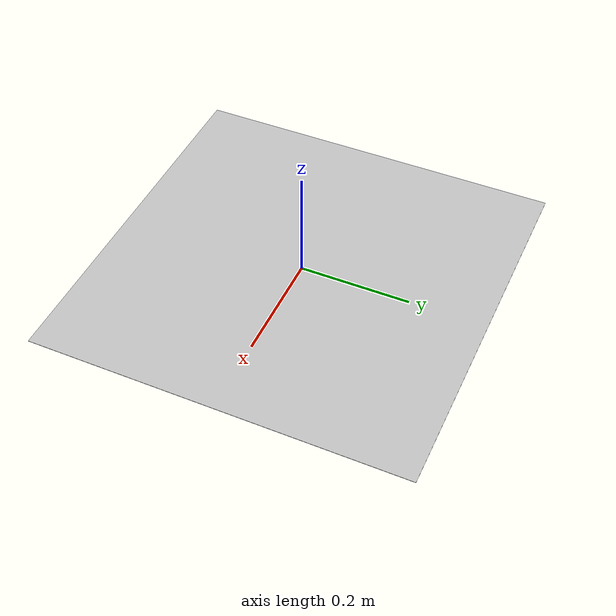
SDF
<?xml version="1.0"?>
<sdf version="1.6">
<model name="project2_straight_road">
  <static>true</static>
    <link name="link">
      <collision name="collision">
        <geometry>
          <plane>
            <normal>0 0 1</normal>
            <size>0.68 0.68</size>
          </plane>
        </geometry>
        <surface>
          <friction>
            <ode>
              <mu>75</mu>
              <mu2>75</mu2>
            </ode>
          </friction>
        </surface>
      </collision>
      <visual name="visual">
        <cast_shadows>false</cast_shadows>
        <geometry>
          <plane>
            <normal>0 0 1</normal>
            <size>0.68 0.68</size>
          </plane>
        </geometry>
        <material>
          <script>
            <uri>model://project2_straight_road/materials/scripts</uri>
            <uri>model://project2_straight_road/materials/textures</uri>
            <name>project2_straight_road/Image</name>
          </script>
        </material>
      </visual>
    </link>
  </model>
</sdf>
